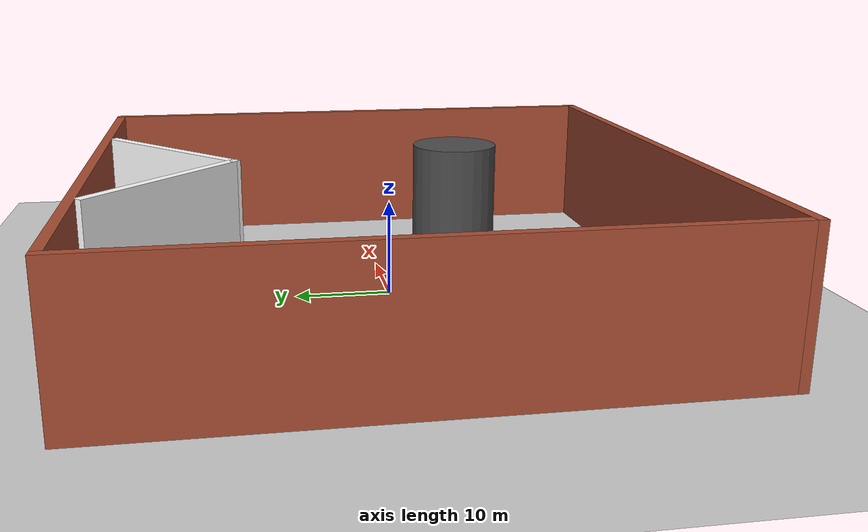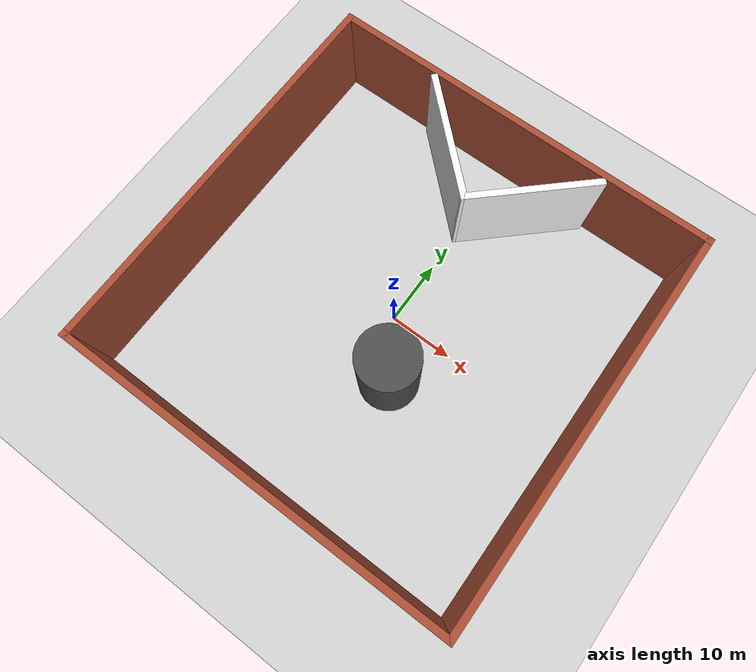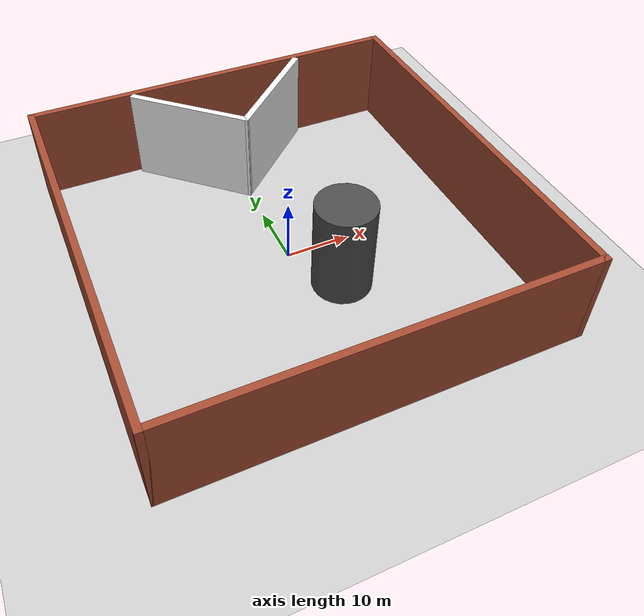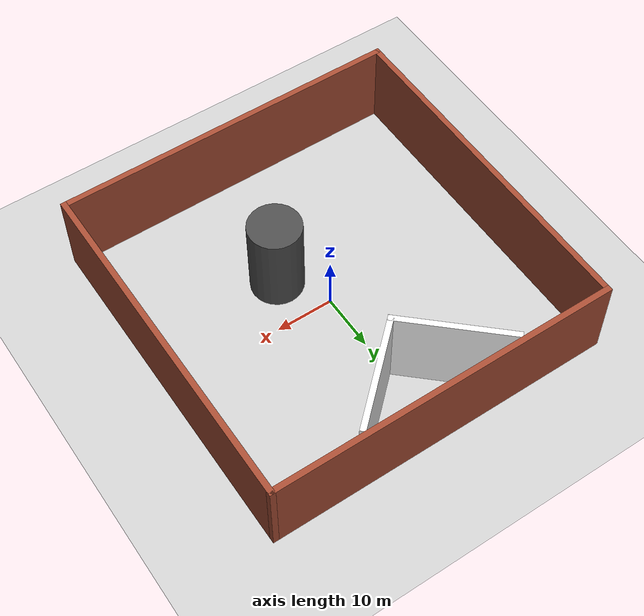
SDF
<sdf version="1.6">
 <world name="default">
  <light name="sun" type="directional">
   <pose>0 0 10 0 -0 0</pose>
   <diffuse>0.8 0.8 0.8 1</diffuse>
   <specular>0.2 0.2 0.2 1</specular>
   <attenuation>
    <range>1000</range>
    <constant>0.9</constant>
    <linear>0.01</linear>
    <quadratic>0.001</quadratic>
   </attenuation>
   <direction>-0.5 0.1 -0.9</direction>
  </light>
  <model name="ground_plane">
   <static>1</static>
   <link name="link">
    <collision name="collision">
     <geometry><plane><normal>0 0 1</normal><size>100 100</size></plane></geometry>
     <surface>
      <contact><collide_bitmask>65535</collide_bitmask></contact>
      <friction><ode><mu>100</mu><mu2>50</mu2></ode></friction>
     </surface>
    </collision>
    <visual name="visual">
     <cast_shadows>0</cast_shadows>
     <geometry><plane><normal>0 0 1</normal><size>100 100</size></plane></geometry>
     <material>
      <script><uri>file://media/materials/scripts/gazebo.material</uri><name>Gazebo/Grey</name></script>
     </material>
    </visual>
   </link>
  </model>
  <gravity>0 0 -9.8</gravity>
  <magnetic_field>6e-06 2.3e-05 -4.2e-05</magnetic_field>
  <atmosphere type="adiabatic"/>
  <physics name="default_physics" default="0" type="ode">
   <max_step_size>0.001</max_step_size>
   <real_time_factor>1</real_time_factor>
   <real_time_update_rate>1000</real_time_update_rate>
  </physics>
  <scene><ambient>0.4 0.4 0.4 1</ambient><background>0.7 0.7 0.7 1</background><shadows>1</shadows></scene>
  <spherical_coordinates>
   <surface_model>EARTH_WGS84</surface_model>
   <latitude_deg>0</latitude_deg>
   <longitude_deg>0</longitude_deg>
   <elevation>0</elevation>
   <heading_deg>0</heading_deg>
  </spherical_coordinates>
  <model name="my_arena">
   <link name="Wall_12">
    <collision name="Wall_12_Collision">
     <geometry><box><size>61 1 15</size></box></geometry>
     <pose>0 0 7.5 0 -0 0</pose>
    </collision>
    <visual name="Wall_12_Visual">
     <pose>0 0 7.5 0 -0 0</pose>
     <geometry><box><size>61 1 15</size></box></geometry>
     <material>
      <script><uri>file://media/materials/scripts/gazebo.material</uri><name>Gazebo/Bricks</name></script>
      <ambient>1 1 1 1</ambient>
     </material>
     <meta><layer>0</layer></meta>
    </visual>
    <pose>0 -30 0 0 -0 0</pose>
   </link>
   <link name="Wall_16">
    <collision name="Wall_16_Collision">
     <geometry><box><size>61 1 15</size></box></geometry>
     <pose>0 0 7.5 0 -0 0</pose>
    </collision>
    <visual name="Wall_16_Visual">
     <pose>0 0 7.5 0 -0 0</pose>
     <geometry><box><size>61 1 15</size></box></geometry>
     <material>
      <script><uri>file://media/materials/scripts/gazebo.material</uri><name>Gazebo/Bricks</name></script>
      <ambient>1 1 1 1</ambient>
     </material>
     <meta><layer>0</layer></meta>
    </visual>
    <pose>-30 0 0 0 -0 1.5708</pose>
   </link>
   <link name="Wall_18">
    <collision name="Wall_18_Collision">
     <geometry><box><size>61 1 15</size></box></geometry>
     <pose>0 0 7.5 0 -0 0</pose>
    </collision>
    <visual name="Wall_18_Visual">
     <pose>0 0 7.5 0 -0 0</pose>
     <geometry><box><size>61 1 15</size></box></geometry>
     <material>
      <script><uri>file://media/materials/scripts/gazebo.material</uri><name>Gazebo/Bricks</name></script>
      <ambient>1 1 1 1</ambient>
     </material>
     <meta><layer>0</layer></meta>
    </visual>
    <pose>30 0 0 0 -0 1.5708</pose>
   </link>
   <link name="Wall_20">
    <collision name="Wall_20_Collision">
     <geometry><box><size>61 1 15</size></box></geometry>
     <pose>0 0 7.5 0 -0 0</pose>
    </collision>
    <visual name="Wall_20_Visual">
     <pose>0 0 7.5 0 -0 0</pose>
     <geometry><box><size>61 1 15</size></box></geometry>
     <material>
      <script><uri>file://media/materials/scripts/gazebo.material</uri><name>Gazebo/Bricks</name></script>
      <ambient>1 1 1 1</ambient>
     </material>
     <meta><layer>0</layer></meta>
    </visual>
    <pose>0 30 0 0 -0 3.14159</pose>
   </link>
   <static>1</static>
  </model>
  <model name="cylinder">
   <link name="link">
    <inertial>
     <mass>615.512</mass>
     <inertia><ixx>25596.9</ixx><ixy>0</ixy><ixz>0</ixz><iyy>25596.9</iyy><iyz>0</iyz><izz>2166.32</izz></inertia>
    </inertial>
    <visual name="visual">
     <geometry><cylinder><radius>4.5</radius><length>15</length></cylinder></geometry>
     <material>
      <script><name>Gazebo/DarkGrey</name><uri>file://media/materials/scripts/gazebo.material</uri></script>
      <shader type="pixel"><normal_map>__default__</normal_map></shader>
      <ambient>0.3 0.3 0.3 1</ambient>
      <diffuse>0.7 0.7 0.7 1</diffuse>
      <specular>0.01 0.01 0.01 1</specular>
      <emissive>0 0 0 1</emissive>
     </material>
    </visual>
    <collision name="collision">
     <geometry><cylinder><radius>4.5</radius><length>15</length></cylinder></geometry>
     <surface>
      <friction>
       <ode><mu>1</mu><mu2>1</mu2><fdir1>0 0 0</fdir1><slip1>0</slip1><slip2>0</slip2></ode>
       <torsional>
        <coefficient>1</coefficient>
        <patch_radius>0</patch_radius>
        <surface_radius>0</surface_radius>
        <use_patch_radius>1</use_patch_radius>
        <ode><slip>0</slip></ode>
       </torsional>
      </friction>
      <bounce><restitution_coefficient>0</restitution_coefficient><threshold>1e+06</threshold></bounce>
      <contact>
       <collide_without_contact>0</collide_without_contact>
       <collide_without_contact_bitmask>1</collide_without_contact_bitmask>
       <collide_bitmask>1</collide_bitmask>
       <ode>
        <soft_cfm>0</soft_cfm>
        <soft_erp>0.2</soft_erp>
        <kp>1e+13</kp>
        <kd>1</kd>
        <max_vel>0.01</max_vel>
        <min_depth>0</min_depth>
       </ode>
       <bullet>
        <split_impulse>1</split_impulse>
        <split_impulse_penetration_threshold>-0.01</split_impulse_penetration_threshold>
        <soft_cfm>0</soft_cfm>
        <soft_erp>0.2</soft_erp>
        <kp>1e+13</kp>
        <kd>1</kd>
       </bullet>
      </contact>
     </surface>
    </collision>
   </link>
   <static>0</static>
   <pose>5 -8 7.5 0 -0 0</pose>
  </model>
  <model name="Untitled">
   <pose>-0 22.5 0 0 -0 0</pose>
   <link name="Wall_22">
    <collision name="Wall_22_Collision">
     <geometry><box><size>20.105 1 15</size></box></geometry>
     <pose>0 0 7.5 0 -0 0</pose>
    </collision>
    <visual name="Wall_22_Visual">
     <pose>0 0 7.5 0 -0 0</pose>
     <geometry><box><size>20.105 1 15</size></box></geometry>
     <material>
      <script><uri>file://media/materials/scripts/gazebo.material</uri><name>Gazebo/Pedestrian</name></script>
      <ambient>1 1 1 1</ambient>
     </material>
     <meta><layer>0</layer></meta>
    </visual>
    <pose>-7 -0 0 0 -0 -0.748378</pose>
   </link>
   <link name="Wall_24">
    <collision name="Wall_24_Collision">
     <geometry><box><size>20.105 1 15</size></box></geometry>
     <pose>0 0 7.5 0 -0 0</pose>
    </collision>
    <visual name="Wall_24_Visual">
     <pose>0 0 7.5 0 -0 0</pose>
     <geometry><box><size>20.105 1 15</size></box></geometry>
     <material>
      <script><uri>file://media/materials/scripts/gazebo.material</uri><name>Gazebo/Pedestrian</name></script>
      <ambient>1 1 1 1</ambient>
     </material>
     <meta><layer>0</layer></meta>
    </visual>
    <pose>7 -0 0 0 -0 -2.39322</pose>
   </link>
   <static>1</static>
  </model>
 </world>
</sdf>
